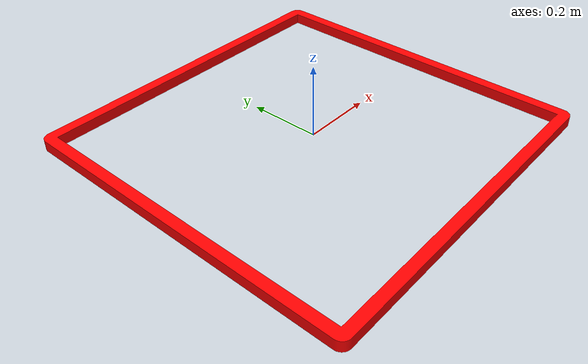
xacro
<?xml version="1.0"?>
<robot name="peligro_limit">
     <link name="peligro">
        <inertial>
          <origin xyz="0 0 0" />
          <mass value="0.001" />
          <inertia  ixx="0.000001" ixy="0.0"  ixz="0.0"  iyy="0.000001"  iyz="0.0"  izz="0.000001" />
        </inertial>
        <collision>
        <origin rpy="0.0 0.0 0.0" xyz="0.0 0.0 0.0" />
        <geometry>
          <mesh filename="package://proyecto_intermedio_robotica/meshes/peligro.stl" scale="0.03 0.03 0.03"/>
        </geometry>
      </collision>
      <visual>
        <origin rpy="0.0 0.0 0.0" xyz="0.0 0.0 0.0" />
        <geometry>
          <mesh filename="package://proyecto_intermedio_robotica/meshes/peligro.stl" scale="0.03 0.03 0.03"/>
        </geometry>
        <material name="red">
          <color rgba="1.0 0.0 0.0 1.0"/>
        </material>
      </visual>
     </link>
     <gazebo reference="peligro">
       <turnGravityOff>true</turnGravityOff>
       <material>Gazebo/Orange</material>
     </gazebo>
</robot>
